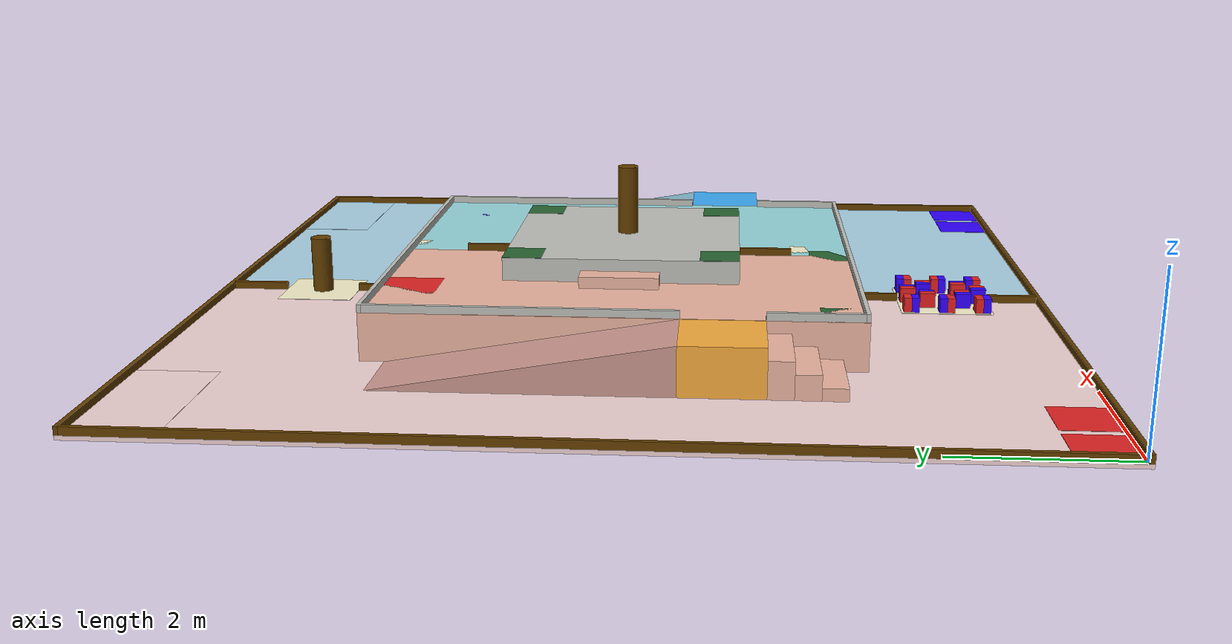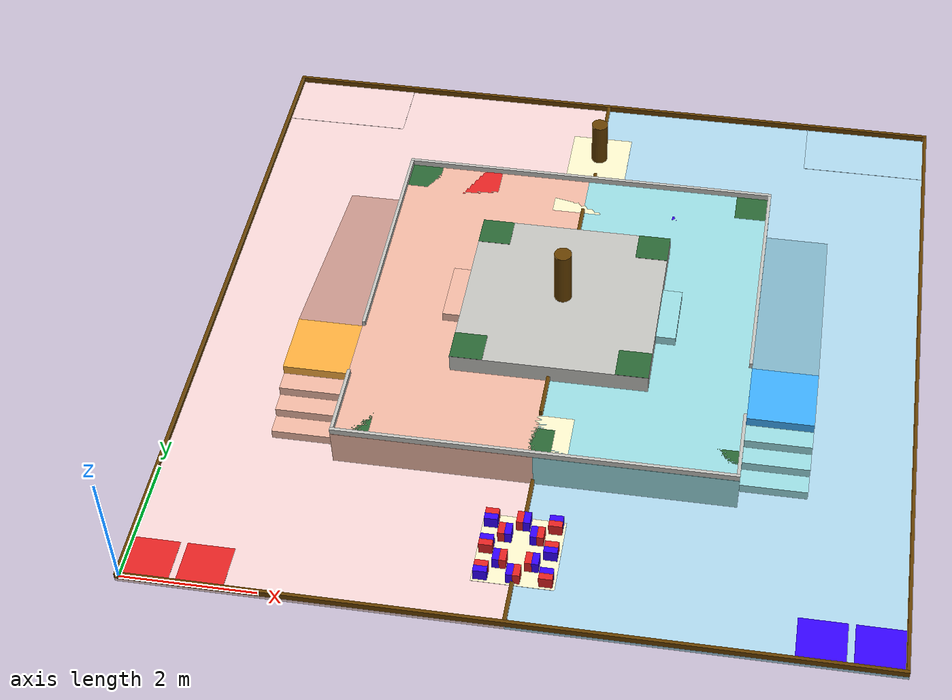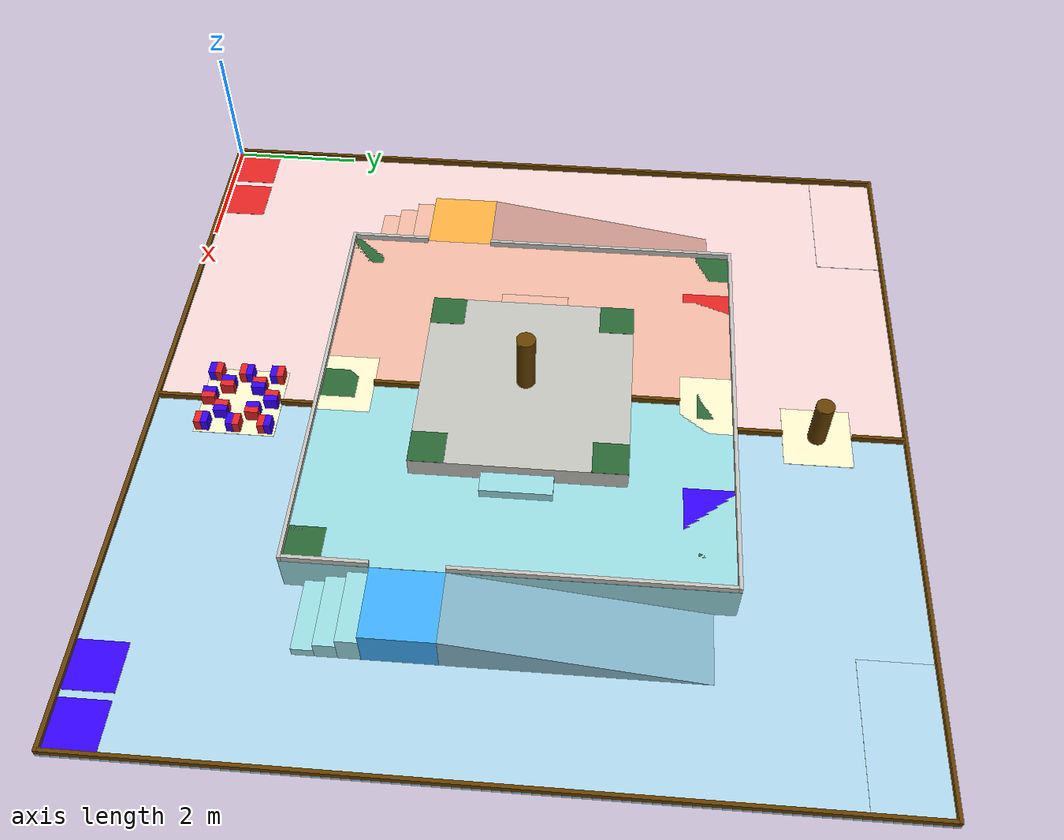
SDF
<?xml version="1.0"?>
<sdf version="1.6">
  <model name="br_field">
    <static>true</static>
    <link name="ground_red">
      <pose>2.725 5.5 -0.025 0 0 0</pose>
      <visual name="v"><geometry><box><size>5.55 11.1 0.05</size></box></geometry><material><ambient>0.941 0.824 0.824 1.00</ambient><diffuse>0.941 0.824 0.824 1.00</diffuse></material></visual>
      <collision name="c"><geometry><box><size>5.55 11.1 0.05</size></box></geometry></collision>
    </link>
    <link name="ground_blue">
      <pose>8.275 5.5 -0.025 0 0 0</pose>
      <visual name="v"><geometry><box><size>5.55 11.1 0.05</size></box></geometry><material><ambient>0.667 0.824 0.902 1.00</ambient><diffuse>0.667 0.824 0.902 1.00</diffuse></material></visual>
      <collision name="c"><geometry><box><size>5.55 11.1 0.05</size></box></geometry></collision>
    </link>
    <link name="ground_shared_area">
      <pose>5.5 9.75 0.002 0 0 0</pose>
      <visual name="v"><geometry><box><size>1 1 0.004</size></box></geometry><material><ambient>0.961 0.941 0.784 1.00</ambient><diffuse>0.961 0.941 0.784 1.00</diffuse></material></visual>
    </link>
    <link name="sky_board">
      <pose>5.5 1.25 0.002 0 0 0</pose>
      <visual name="v"><geometry><box><size>1.2 1.2 0.004</size></box></geometry><material><ambient>0.961 0.941 0.784 1.00</ambient><diffuse>0.961 0.941 0.784 1.00</diffuse></material></visual>
    </link>
    <link name="storage_ours">
      <pose>1 10.5 0.002 0 0 0</pose>
      <visual name="v"><geometry><box><size>2 1 0.004</size></box></geometry><material><ambient>0.941 0.824 0.824 1.00</ambient><diffuse>0.941 0.824 0.824 1.00</diffuse></material></visual>
    </link>
    <link name="storage_theirs">
      <pose>10 10.5 0.002 0 0 0</pose>
      <visual name="v"><geometry><box><size>2 1 0.004</size></box></geometry><material><ambient>0.667 0.824 0.902 1.00</ambient><diffuse>0.667 0.824 0.902 1.00</diffuse></material></visual>
    </link>
    <link name="start_ours_tr">
      <pose>0.35 0.35 0.002 0 0 0</pose>
      <visual name="v"><geometry><box><size>0.7 0.7 0.004</size></box></geometry><material><ambient>0.875 0.133 0.133 1.00</ambient><diffuse>0.875 0.133 0.133 1.00</diffuse></material></visual>
    </link>
    <link name="start_ours_br">
      <pose>1.15 0.35 0.002 0 0 0</pose>
      <visual name="v"><geometry><box><size>0.7 0.7 0.004</size></box></geometry><material><ambient>0.875 0.133 0.133 1.00</ambient><diffuse>0.875 0.133 0.133 1.00</diffuse></material></visual>
    </link>
    <link name="start_theirs_tr">
      <pose>10.65 0.35 0.002 0 0 0</pose>
      <visual name="v"><geometry><box><size>0.7 0.7 0.004</size></box></geometry><material><ambient>0.196 0.000 1.000 1.00</ambient><diffuse>0.196 0.000 1.000 1.00</diffuse></material></visual>
    </link>
    <link name="start_theirs_br">
      <pose>9.85 0.35 0.002 0 0 0</pose>
      <visual name="v"><geometry><box><size>0.7 0.7 0.004</size></box></geometry><material><ambient>0.196 0.000 1.000 1.00</ambient><diffuse>0.196 0.000 1.000 1.00</diffuse></material></visual>
    </link>
    <link name="l1_structure_w">
      <pose>4 5.5 0.3 0 0 0</pose>
      <visual name="v"><geometry><box><size>3 6 0.6</size></box></geometry><material><ambient>0.922 0.706 0.627 1.00</ambient><diffuse>0.922 0.706 0.627 1.00</diffuse></material></visual>
      <collision name="c"><geometry><box><size>3 6 0.6</size></box></geometry></collision>
    </link>
    <link name="l1_structure_e">
      <pose>7 5.5 0.3 0 0 0</pose>
      <visual name="v"><geometry><box><size>3 6 0.6</size></box></geometry><material><ambient>0.588 0.843 0.863 1.00</ambient><diffuse>0.588 0.843 0.863 1.00</diffuse></material></visual>
      <collision name="c"><geometry><box><size>3 6 0.6</size></box></geometry></collision>
    </link>
    <link name="l1_play_w">
      <pose>4 5.5 0.602 0 0 0</pose>
      <visual name="v"><geometry><box><size>3 6 0.004</size></box></geometry><material><ambient>0.922 0.706 0.627 1.00</ambient><diffuse>0.922 0.706 0.627 1.00</diffuse></material></visual>
    </link>
    <link name="l1_play_e">
      <pose>7 5.5 0.602 0 0 0</pose>
      <visual name="v"><geometry><box><size>3 6 0.004</size></box></geometry><material><ambient>0.588 0.843 0.863 1.00</ambient><diffuse>0.588 0.843 0.863 1.00</diffuse></material></visual>
    </link>
    <link name="l1_shared_south">
      <pose>5.5 2.925 0.602 0 0 0</pose>
      <visual name="v"><geometry><box><size>1 0.75 0.004</size></box></geometry><material><ambient>0.961 0.941 0.784 1.00</ambient><diffuse>0.961 0.941 0.784 1.00</diffuse></material></visual>
    </link>
    <link name="l1_shared_north">
      <pose>5.5 8.075 0.602 0 0 0</pose>
      <visual name="v"><geometry><box><size>1 0.75 0.004</size></box></geometry><material><ambient>0.961 0.941 0.784 1.00</ambient><diffuse>0.961 0.941 0.784 1.00</diffuse></material></visual>
    </link>
    <link name="stairs_ours_0">
      <pose>2 2.95 0.075 0 0 0</pose>
      <visual name="v"><geometry><box><size>1 0.3 0.15</size></box></geometry><material><ambient>0.922 0.706 0.627 1.00</ambient><diffuse>0.922 0.706 0.627 1.00</diffuse></material></visual>
      <collision name="c"><geometry><box><size>1 0.3 0.15</size></box></geometry></collision>
    </link>
    <link name="stairs_ours_1">
      <pose>2 3.25 0.15 0 0 0</pose>
      <visual name="v"><geometry><box><size>1 0.3 0.3</size></box></geometry><material><ambient>0.922 0.706 0.627 1.00</ambient><diffuse>0.922 0.706 0.627 1.00</diffuse></material></visual>
      <collision name="c"><geometry><box><size>1 0.3 0.3</size></box></geometry></collision>
    </link>
    <link name="stairs_ours_2">
      <pose>2 3.55 0.225 0 0 0</pose>
      <visual name="v"><geometry><box><size>1 0.3 0.45</size></box></geometry><material><ambient>0.922 0.706 0.627 1.00</ambient><diffuse>0.922 0.706 0.627 1.00</diffuse></material></visual>
      <collision name="c"><geometry><box><size>1 0.3 0.45</size></box></geometry></collision>
    </link>
    <link name="ramp_ours">
      <pose>2 6.45 0 0 0 0</pose>
      <visual name="v"><geometry><mesh><uri>model://br_field/meshes/ramp_red.obj</uri></mesh></geometry><material><ambient>0.784 0.588 0.549 1.00</ambient><diffuse>0.784 0.588 0.549 1.00</diffuse></material></visual>
      <collision name="c"><geometry><mesh><uri>model://br_field/meshes/ramp_red.obj</uri></mesh></geometry></collision>
    </link>
    <link name="transfer_ours">
      <pose>2 4.2 0.3 0 0 0</pose>
      <visual name="v"><geometry><box><size>1 1 0.6</size></box></geometry><material><ambient>0.961 0.667 0.235 1.00</ambient><diffuse>0.961 0.667 0.235 1.00</diffuse></material></visual>
      <collision name="c"><geometry><box><size>1 1 0.6</size></box></geometry></collision>
    </link>
    <link name="stairs_theirs_0">
      <pose>9 2.95 0.075 0 0 0</pose>
      <visual name="v"><geometry><box><size>1 0.3 0.15</size></box></geometry><material><ambient>0.588 0.843 0.863 1.00</ambient><diffuse>0.588 0.843 0.863 1.00</diffuse></material></visual>
      <collision name="c"><geometry><box><size>1 0.3 0.15</size></box></geometry></collision>
    </link>
    <link name="stairs_theirs_1">
      <pose>9 3.25 0.15 0 0 0</pose>
      <visual name="v"><geometry><box><size>1 0.3 0.3</size></box></geometry><material><ambient>0.588 0.843 0.863 1.00</ambient><diffuse>0.588 0.843 0.863 1.00</diffuse></material></visual>
      <collision name="c"><geometry><box><size>1 0.3 0.3</size></box></geometry></collision>
    </link>
    <link name="stairs_theirs_2">
      <pose>9 3.55 0.225 0 0 0</pose>
      <visual name="v"><geometry><box><size>1 0.3 0.45</size></box></geometry><material><ambient>0.588 0.843 0.863 1.00</ambient><diffuse>0.588 0.843 0.863 1.00</diffuse></material></visual>
      <collision name="c"><geometry><box><size>1 0.3 0.45</size></box></geometry></collision>
    </link>
    <link name="ramp_theirs">
      <pose>9 6.45 0 0 0 0</pose>
      <visual name="v"><geometry><mesh><uri>model://br_field/meshes/ramp_blue.obj</uri></mesh></geometry><material><ambient>0.510 0.706 0.784 1.00</ambient><diffuse>0.510 0.706 0.784 1.00</diffuse></material></visual>
      <collision name="c"><geometry><mesh><uri>model://br_field/meshes/ramp_blue.obj</uri></mesh></geometry></collision>
    </link>
    <link name="transfer_theirs">
      <pose>9 4.2 0.3 0 0 0</pose>
      <visual name="v"><geometry><box><size>1 1 0.6</size></box></geometry><material><ambient>0.235 0.667 0.961 1.00</ambient><diffuse>0.235 0.667 0.961 1.00</diffuse></material></visual>
      <collision name="c"><geometry><box><size>1 1 0.6</size></box></geometry></collision>
    </link>
    <link name="l2stair_ours">
      <pose>3.85 5.5 0.675 0 0 0</pose>
      <visual name="v"><geometry><box><size>0.3 1 0.15</size></box></geometry><material><ambient>0.922 0.706 0.627 1.00</ambient><diffuse>0.922 0.706 0.627 1.00</diffuse></material></visual>
      <collision name="c"><geometry><box><size>0.3 1 0.15</size></box></geometry></collision>
    </link>
    <link name="l2stair_theirs">
      <pose>7.15 5.5 0.675 0 0 0</pose>
      <visual name="v"><geometry><box><size>0.3 1 0.15</size></box></geometry><material><ambient>0.588 0.843 0.863 1.00</ambient><diffuse>0.588 0.843 0.863 1.00</diffuse></material></visual>
      <collision name="c"><geometry><box><size>0.3 1 0.15</size></box></geometry></collision>
    </link>
    <link name="l2_platform">
      <pose>5.5 5.5 0.75 0 0 0</pose>
      <visual name="v"><geometry><box><size>3 3 0.3</size></box></geometry><material><ambient>0.745 0.745 0.725 1.00</ambient><diffuse>0.745 0.745 0.725 1.00</diffuse></material></visual>
      <collision name="c"><geometry><box><size>3 3 0.3</size></box></geometry></collision>
    </link>
    <link name="spot_00">
      <pose>2.8 2.8 0.602 0 0 0</pose>
      <visual name="v"><geometry><box><size>0.5 0.5 0.004</size></box></geometry><material><ambient>0.157 0.392 0.196 1.00</ambient><diffuse>0.157 0.392 0.196 1.00</diffuse></material></visual>
    </link>
    <link name="spot_01">
      <pose>2.8 8.2 0.602 0 0 0</pose>
      <visual name="v"><geometry><box><size>0.5 0.5 0.004</size></box></geometry><material><ambient>0.157 0.392 0.196 1.00</ambient><diffuse>0.157 0.392 0.196 1.00</diffuse></material></visual>
    </link>
    <link name="spot_02">
      <pose>8.2 2.8 0.602 0 0 0</pose>
      <visual name="v"><geometry><box><size>0.5 0.5 0.004</size></box></geometry><material><ambient>0.157 0.392 0.196 1.00</ambient><diffuse>0.157 0.392 0.196 1.00</diffuse></material></visual>
    </link>
    <link name="spot_03">
      <pose>8.2 8.2 0.602 0 0 0</pose>
      <visual name="v"><geometry><box><size>0.5 0.5 0.004</size></box></geometry><material><ambient>0.157 0.392 0.196 1.00</ambient><diffuse>0.157 0.392 0.196 1.00</diffuse></material></visual>
    </link>
    <link name="spot_04">
      <pose>5.5 2.8 0.602 0 0 0</pose>
      <visual name="v"><geometry><box><size>0.5 0.5 0.004</size></box></geometry><material><ambient>0.157 0.392 0.196 1.00</ambient><diffuse>0.157 0.392 0.196 1.00</diffuse></material></visual>
    </link>
    <link name="spot_05">
      <pose>5.5 8.2 0.602 0 0 0</pose>
      <visual name="v"><geometry><box><size>0.5 0.5 0.004</size></box></geometry><material><ambient>0.157 0.392 0.196 1.00</ambient><diffuse>0.157 0.392 0.196 1.00</diffuse></material></visual>
    </link>
    <link name="spot_06">
      <pose>4.25 4.25 0.902 0 0 0</pose>
      <visual name="v"><geometry><box><size>0.5 0.5 0.004</size></box></geometry><material><ambient>0.157 0.392 0.196 1.00</ambient><diffuse>0.157 0.392 0.196 1.00</diffuse></material></visual>
    </link>
    <link name="spot_07">
      <pose>6.75 4.25 0.902 0 0 0</pose>
      <visual name="v"><geometry><box><size>0.5 0.5 0.004</size></box></geometry><material><ambient>0.157 0.392 0.196 1.00</ambient><diffuse>0.157 0.392 0.196 1.00</diffuse></material></visual>
    </link>
    <link name="spot_08">
      <pose>6.75 6.75 0.902 0 0 0</pose>
      <visual name="v"><geometry><box><size>0.5 0.5 0.004</size></box></geometry><material><ambient>0.157 0.392 0.196 1.00</ambient><diffuse>0.157 0.392 0.196 1.00</diffuse></material></visual>
    </link>
    <link name="spot_09">
      <pose>4.25 6.75 0.902 0 0 0</pose>
      <visual name="v"><geometry><box><size>0.5 0.5 0.004</size></box></geometry><material><ambient>0.157 0.392 0.196 1.00</ambient><diffuse>0.157 0.392 0.196 1.00</diffuse></material></visual>
    </link>
    <link name="mustika_pillar">
      <pose>5.5 9.75 0.25 0 0 0</pose>
      <visual name="v"><geometry><cylinder><radius>0.135</radius><height>0.5</height></cylinder></geometry><material><ambient>0.392 0.243 0.000 1.00</ambient><diffuse>0.392 0.243 0.000 1.00</diffuse></material></visual>
      <collision name="c"><geometry><cylinder><radius>0.135</radius><height>0.5</height></cylinder></geometry></collision>
    </link>
    <link name="core_pillar">
      <pose>5.5 5.5 1.3 0 0 0</pose>
      <visual name="v"><geometry><cylinder><radius>0.135</radius><height>0.8</height></cylinder></geometry><material><ambient>0.392 0.243 0.000 1.00</ambient><diffuse>0.392 0.243 0.000 1.00</diffuse></material></visual>
      <collision name="c"><geometry><cylinder><radius>0.135</radius><height>0.8</height></cylinder></geometry></collision>
    </link>
    <link name="sky_00_0">
      <pose>5.0333 0.8333 0.1 0 0 0</pose>
      <visual name="v"><geometry><box><size>0.2 0.1 0.2</size></box></geometry><material><ambient>0.875 0.133 0.133 1.00</ambient><diffuse>0.875 0.133 0.133 1.00</diffuse></material></visual>
      <collision name="c"><geometry><box><size>0.2 0.1 0.2</size></box></geometry></collision>
    </link>
    <link name="sky_00_1">
      <pose>5.0333 0.7333 0.1 0 0 0</pose>
      <visual name="v"><geometry><box><size>0.2 0.1 0.2</size></box></geometry><material><ambient>0.196 0.000 1.000 1.00</ambient><diffuse>0.196 0.000 1.000 1.00</diffuse></material></visual>
      <collision name="c"><geometry><box><size>0.2 0.1 0.2</size></box></geometry></collision>
    </link>
    <link name="sky_01_0">
      <pose>5.55 0.7833 0.1 0 0 0</pose>
      <visual name="v"><geometry><box><size>0.1 0.2 0.2</size></box></geometry><material><ambient>0.875 0.133 0.133 1.00</ambient><diffuse>0.875 0.133 0.133 1.00</diffuse></material></visual>
      <collision name="c"><geometry><box><size>0.1 0.2 0.2</size></box></geometry></collision>
    </link>
    <link name="sky_01_1">
      <pose>5.45 0.7833 0.1 0 0 0</pose>
      <visual name="v"><geometry><box><size>0.1 0.2 0.2</size></box></geometry><material><ambient>0.196 0.000 1.000 1.00</ambient><diffuse>0.196 0.000 1.000 1.00</diffuse></material></visual>
      <collision name="c"><geometry><box><size>0.1 0.2 0.2</size></box></geometry></collision>
    </link>
    <link name="sky_02_0">
      <pose>5.9667 0.7333 0.1 0 0 0</pose>
      <visual name="v"><geometry><box><size>0.2 0.1 0.2</size></box></geometry><material><ambient>0.875 0.133 0.133 1.00</ambient><diffuse>0.875 0.133 0.133 1.00</diffuse></material></visual>
      <collision name="c"><geometry><box><size>0.2 0.1 0.2</size></box></geometry></collision>
    </link>
    <link name="sky_02_1">
      <pose>5.9667 0.8333 0.1 0 0 0</pose>
      <visual name="v"><geometry><box><size>0.2 0.1 0.2</size></box></geometry><material><ambient>0.196 0.000 1.000 1.00</ambient><diffuse>0.196 0.000 1.000 1.00</diffuse></material></visual>
      <collision name="c"><geometry><box><size>0.2 0.1 0.2</size></box></geometry></collision>
    </link>
    <link name="sky_03_0">
      <pose>5.3167 1.0167 0.1 0 0 0</pose>
      <visual name="v"><geometry><box><size>0.1 0.2 0.2</size></box></geometry><material><ambient>0.875 0.133 0.133 1.00</ambient><diffuse>0.875 0.133 0.133 1.00</diffuse></material></visual>
      <collision name="c"><geometry><box><size>0.1 0.2 0.2</size></box></geometry></collision>
    </link>
    <link name="sky_03_1">
      <pose>5.2167 1.0167 0.1 0 0 0</pose>
      <visual name="v"><geometry><box><size>0.1 0.2 0.2</size></box></geometry><material><ambient>0.196 0.000 1.000 1.00</ambient><diffuse>0.196 0.000 1.000 1.00</diffuse></material></visual>
      <collision name="c"><geometry><box><size>0.1 0.2 0.2</size></box></geometry></collision>
    </link>
    <link name="sky_04_0">
      <pose>5.6833 1.0167 0.1 0 0 0</pose>
      <visual name="v"><geometry><box><size>0.1 0.2 0.2</size></box></geometry><material><ambient>0.875 0.133 0.133 1.00</ambient><diffuse>0.875 0.133 0.133 1.00</diffuse></material></visual>
      <collision name="c"><geometry><box><size>0.1 0.2 0.2</size></box></geometry></collision>
    </link>
    <link name="sky_04_1">
      <pose>5.7833 1.0167 0.1 0 0 0</pose>
      <visual name="v"><geometry><box><size>0.1 0.2 0.2</size></box></geometry><material><ambient>0.196 0.000 1.000 1.00</ambient><diffuse>0.196 0.000 1.000 1.00</diffuse></material></visual>
      <collision name="c"><geometry><box><size>0.1 0.2 0.2</size></box></geometry></collision>
    </link>
    <link name="sky_05_0">
      <pose>5.0333 1.2 0.1 0 0 0</pose>
      <visual name="v"><geometry><box><size>0.2 0.1 0.2</size></box></geometry><material><ambient>0.875 0.133 0.133 1.00</ambient><diffuse>0.875 0.133 0.133 1.00</diffuse></material></visual>
      <collision name="c"><geometry><box><size>0.2 0.1 0.2</size></box></geometry></collision>
    </link>
    <link name="sky_05_1">
      <pose>5.0333 1.3 0.1 0 0 0</pose>
      <visual name="v"><geometry><box><size>0.2 0.1 0.2</size></box></geometry><material><ambient>0.196 0.000 1.000 1.00</ambient><diffuse>0.196 0.000 1.000 1.00</diffuse></material></visual>
      <collision name="c"><geometry><box><size>0.2 0.1 0.2</size></box></geometry></collision>
    </link>
    <link name="sky_06_0">
      <pose>5.9667 1.3 0.1 0 0 0</pose>
      <visual name="v"><geometry><box><size>0.2 0.1 0.2</size></box></geometry><material><ambient>0.875 0.133 0.133 1.00</ambient><diffuse>0.875 0.133 0.133 1.00</diffuse></material></visual>
      <collision name="c"><geometry><box><size>0.2 0.1 0.2</size></box></geometry></collision>
    </link>
    <link name="sky_06_1">
      <pose>5.9667 1.2 0.1 0 0 0</pose>
      <visual name="v"><geometry><box><size>0.2 0.1 0.2</size></box></geometry><material><ambient>0.196 0.000 1.000 1.00</ambient><diffuse>0.196 0.000 1.000 1.00</diffuse></material></visual>
      <collision name="c"><geometry><box><size>0.2 0.1 0.2</size></box></geometry></collision>
    </link>
    <link name="sky_07_0">
      <pose>5.2167 1.4833 0.1 0 0 0</pose>
      <visual name="v"><geometry><box><size>0.1 0.2 0.2</size></box></geometry><material><ambient>0.875 0.133 0.133 1.00</ambient><diffuse>0.875 0.133 0.133 1.00</diffuse></material></visual>
      <collision name="c"><geometry><box><size>0.1 0.2 0.2</size></box></geometry></collision>
    </link>
    <link name="sky_07_1">
      <pose>5.3167 1.4833 0.1 0 0 0</pose>
      <visual name="v"><geometry><box><size>0.1 0.2 0.2</size></box></geometry><material><ambient>0.196 0.000 1.000 1.00</ambient><diffuse>0.196 0.000 1.000 1.00</diffuse></material></visual>
      <collision name="c"><geometry><box><size>0.1 0.2 0.2</size></box></geometry></collision>
    </link>
    <link name="sky_08_0">
      <pose>5.7833 1.4833 0.1 0 0 0</pose>
      <visual name="v"><geometry><box><size>0.1 0.2 0.2</size></box></geometry><material><ambient>0.875 0.133 0.133 1.00</ambient><diffuse>0.875 0.133 0.133 1.00</diffuse></material></visual>
      <collision name="c"><geometry><box><size>0.1 0.2 0.2</size></box></geometry></collision>
    </link>
    <link name="sky_08_1">
      <pose>5.6833 1.4833 0.1 0 0 0</pose>
      <visual name="v"><geometry><box><size>0.1 0.2 0.2</size></box></geometry><material><ambient>0.196 0.000 1.000 1.00</ambient><diffuse>0.196 0.000 1.000 1.00</diffuse></material></visual>
      <collision name="c"><geometry><box><size>0.1 0.2 0.2</size></box></geometry></collision>
    </link>
    <link name="sky_09_0">
      <pose>5.0333 1.7667 0.1 0 0 0</pose>
      <visual name="v"><geometry><box><size>0.2 0.1 0.2</size></box></geometry><material><ambient>0.875 0.133 0.133 1.00</ambient><diffuse>0.875 0.133 0.133 1.00</diffuse></material></visual>
      <collision name="c"><geometry><box><size>0.2 0.1 0.2</size></box></geometry></collision>
    </link>
    <link name="sky_09_1">
      <pose>5.0333 1.6667 0.1 0 0 0</pose>
      <visual name="v"><geometry><box><size>0.2 0.1 0.2</size></box></geometry><material><ambient>0.196 0.000 1.000 1.00</ambient><diffuse>0.196 0.000 1.000 1.00</diffuse></material></visual>
      <collision name="c"><geometry><box><size>0.2 0.1 0.2</size></box></geometry></collision>
    </link>
    <link name="sky_10_0">
      <pose>5.45 1.7167 0.1 0 0 0</pose>
      <visual name="v"><geometry><box><size>0.1 0.2 0.2</size></box></geometry><material><ambient>0.875 0.133 0.133 1.00</ambient><diffuse>0.875 0.133 0.133 1.00</diffuse></material></visual>
      <collision name="c"><geometry><box><size>0.1 0.2 0.2</size></box></geometry></collision>
    </link>
    <link name="sky_10_1">
      <pose>5.55 1.7167 0.1 0 0 0</pose>
      <visual name="v"><geometry><box><size>0.1 0.2 0.2</size></box></geometry><material><ambient>0.196 0.000 1.000 1.00</ambient><diffuse>0.196 0.000 1.000 1.00</diffuse></material></visual>
      <collision name="c"><geometry><box><size>0.1 0.2 0.2</size></box></geometry></collision>
    </link>
    <link name="sky_11_0">
      <pose>5.9667 1.6667 0.1 0 0 0</pose>
      <visual name="v"><geometry><box><size>0.2 0.1 0.2</size></box></geometry><material><ambient>0.875 0.133 0.133 1.00</ambient><diffuse>0.875 0.133 0.133 1.00</diffuse></material></visual>
      <collision name="c"><geometry><box><size>0.2 0.1 0.2</size></box></geometry></collision>
    </link>
    <link name="sky_11_1">
      <pose>5.9667 1.7667 0.1 0 0 0</pose>
      <visual name="v"><geometry><box><size>0.2 0.1 0.2</size></box></geometry><material><ambient>0.196 0.000 1.000 1.00</ambient><diffuse>0.196 0.000 1.000 1.00</diffuse></material></visual>
      <collision name="c"><geometry><box><size>0.2 0.1 0.2</size></box></geometry></collision>
    </link>
    <link name="fence_s">
      <pose>5.5 -0.025 0.05 0 0 0</pose>
      <visual name="v"><geometry><box><size>11.1 0.05 0.1</size></box></geometry><material><ambient>0.392 0.243 0.000 1.00</ambient><diffuse>0.392 0.243 0.000 1.00</diffuse></material></visual>
      <collision name="c"><geometry><box><size>11.1 0.05 0.1</size></box></geometry></collision>
    </link>
    <link name="fence_n">
      <pose>5.5 11.025 0.05 0 0 0</pose>
      <visual name="v"><geometry><box><size>11.1 0.05 0.1</size></box></geometry><material><ambient>0.392 0.243 0.000 1.00</ambient><diffuse>0.392 0.243 0.000 1.00</diffuse></material></visual>
      <collision name="c"><geometry><box><size>11.1 0.05 0.1</size></box></geometry></collision>
    </link>
    <link name="fence_w">
      <pose>-0.025 5.5 0.05 0 0 0</pose>
      <visual name="v"><geometry><box><size>0.05 11 0.1</size></box></geometry><material><ambient>0.392 0.243 0.000 1.00</ambient><diffuse>0.392 0.243 0.000 1.00</diffuse></material></visual>
      <collision name="c"><geometry><box><size>0.05 11 0.1</size></box></geometry></collision>
    </link>
    <link name="fence_e">
      <pose>11.025 5.5 0.05 0 0 0</pose>
      <visual name="v"><geometry><box><size>0.05 11 0.1</size></box></geometry><material><ambient>0.392 0.243 0.000 1.00</ambient><diffuse>0.392 0.243 0.000 1.00</diffuse></material></visual>
      <collision name="c"><geometry><box><size>0.05 11 0.1</size></box></geometry></collision>
    </link>
    <link name="divider_g_0">
      <pose>5.5 0.325 0.05 0 0 0</pose>
      <visual name="v"><geometry><box><size>0.05 0.65 0.1</size></box></geometry><material><ambient>0.392 0.243 0.000 1.00</ambient><diffuse>0.392 0.243 0.000 1.00</diffuse></material></visual>
      <collision name="c"><geometry><box><size>0.05 0.65 0.1</size></box></geometry></collision>
    </link>
    <link name="divider_g_1">
      <pose>5.5 2.175 0.05 0 0 0</pose>
      <visual name="v"><geometry><box><size>0.05 0.65 0.1</size></box></geometry><material><ambient>0.392 0.243 0.000 1.00</ambient><diffuse>0.392 0.243 0.000 1.00</diffuse></material></visual>
      <collision name="c"><geometry><box><size>0.05 0.65 0.1</size></box></geometry></collision>
    </link>
    <link name="divider_g_2">
      <pose>5.5 8.875 0.05 0 0 0</pose>
      <visual name="v"><geometry><box><size>0.05 0.75 0.1</size></box></geometry><material><ambient>0.392 0.243 0.000 1.00</ambient><diffuse>0.392 0.243 0.000 1.00</diffuse></material></visual>
      <collision name="c"><geometry><box><size>0.05 0.75 0.1</size></box></geometry></collision>
    </link>
    <link name="divider_g_3">
      <pose>5.5 10.625 0.05 0 0 0</pose>
      <visual name="v"><geometry><box><size>0.05 0.75 0.1</size></box></geometry><material><ambient>0.392 0.243 0.000 1.00</ambient><diffuse>0.392 0.243 0.000 1.00</diffuse></material></visual>
      <collision name="c"><geometry><box><size>0.05 0.75 0.1</size></box></geometry></collision>
    </link>
    <link name="divider_l1_0">
      <pose>5.5 3.65 0.65 0 0 0</pose>
      <visual name="v"><geometry><box><size>0.05 0.7 0.1</size></box></geometry><material><ambient>0.392 0.243 0.000 1.00</ambient><diffuse>0.392 0.243 0.000 1.00</diffuse></material></visual>
      <collision name="c"><geometry><box><size>0.05 0.7 0.1</size></box></geometry></collision>
    </link>
    <link name="divider_l1_1">
      <pose>5.5 7.35 0.65 0 0 0</pose>
      <visual name="v"><geometry><box><size>0.05 0.7 0.1</size></box></geometry><material><ambient>0.392 0.243 0.000 1.00</ambient><diffuse>0.392 0.243 0.000 1.00</diffuse></material></visual>
      <collision name="c"><geometry><box><size>0.05 0.7 0.1</size></box></geometry></collision>
    </link>
    <link name="l1pb_s">
      <pose>5.5 2.525 0.65 0 0 0</pose>
      <visual name="v"><geometry><box><size>6 0.05 0.1</size></box></geometry><material><ambient>0.745 0.745 0.725 1.00</ambient><diffuse>0.745 0.745 0.725 1.00</diffuse></material></visual>
      <collision name="c"><geometry><box><size>6 0.05 0.1</size></box></geometry></collision>
    </link>
    <link name="l1pb_n">
      <pose>5.5 8.475 0.65 0 0 0</pose>
      <visual name="v"><geometry><box><size>6 0.05 0.1</size></box></geometry><material><ambient>0.745 0.745 0.725 1.00</ambient><diffuse>0.745 0.745 0.725 1.00</diffuse></material></visual>
      <collision name="c"><geometry><box><size>6 0.05 0.1</size></box></geometry></collision>
    </link>
    <link name="l1pb_w_s">
      <pose>2.525 3.125 0.65 0 0 0</pose>
      <visual name="v"><geometry><box><size>0.05 1.15 0.1</size></box></geometry><material><ambient>0.745 0.745 0.725 1.00</ambient><diffuse>0.745 0.745 0.725 1.00</diffuse></material></visual>
      <collision name="c"><geometry><box><size>0.05 1.15 0.1</size></box></geometry></collision>
    </link>
    <link name="l1pb_w_n">
      <pose>2.525 6.575 0.65 0 0 0</pose>
      <visual name="v"><geometry><box><size>0.05 3.75 0.1</size></box></geometry><material><ambient>0.745 0.745 0.725 1.00</ambient><diffuse>0.745 0.745 0.725 1.00</diffuse></material></visual>
      <collision name="c"><geometry><box><size>0.05 3.75 0.1</size></box></geometry></collision>
    </link>
    <link name="l1pb_e_s">
      <pose>8.475 3.125 0.65 0 0 0</pose>
      <visual name="v"><geometry><box><size>0.05 1.15 0.1</size></box></geometry><material><ambient>0.745 0.745 0.725 1.00</ambient><diffuse>0.745 0.745 0.725 1.00</diffuse></material></visual>
      <collision name="c"><geometry><box><size>0.05 1.15 0.1</size></box></geometry></collision>
    </link>
    <link name="l1pb_e_n">
      <pose>8.475 6.575 0.65 0 0 0</pose>
      <visual name="v"><geometry><box><size>0.05 3.75 0.1</size></box></geometry><material><ambient>0.745 0.745 0.725 1.00</ambient><diffuse>0.745 0.745 0.725 1.00</diffuse></material></visual>
      <collision name="c"><geometry><box><size>0.05 3.75 0.1</size></box></geometry></collision>
    </link>
    <link name="retry_ours">
      <pose>3.7 8.1 0.602 0 0 0</pose>
      <visual name="v"><geometry><box><size>0.7 0.7 0.004</size></box></geometry><material><ambient>0.875 0.133 0.133 1.00</ambient><diffuse>0.875 0.133 0.133 1.00</diffuse></material></visual>
    </link>
    <link name="retry_theirs">
      <pose>7.3 8.1 0.602 0 0 0</pose>
      <visual name="v"><geometry><box><size>0.7 0.7 0.004</size></box></geometry><material><ambient>0.196 0.000 1.000 1.00</ambient><diffuse>0.196 0.000 1.000 1.00</diffuse></material></visual>
    </link>
  </model>
</sdf>
